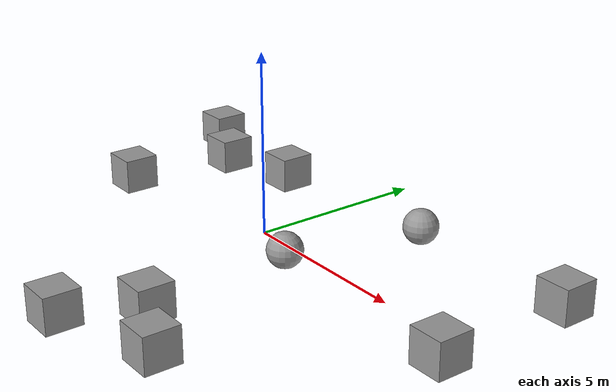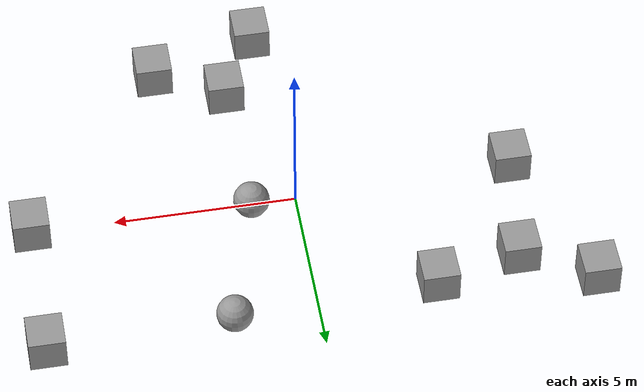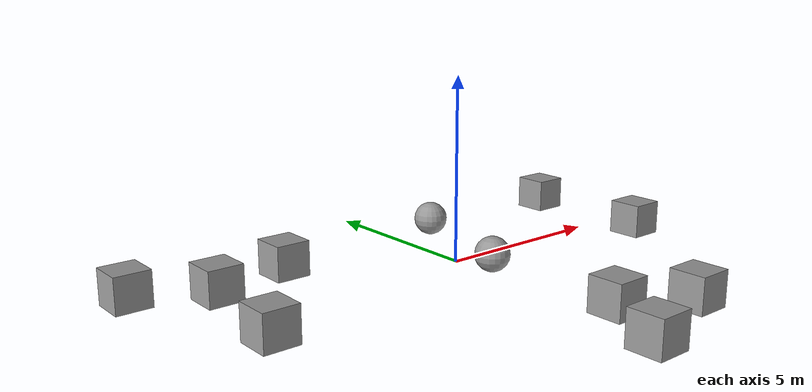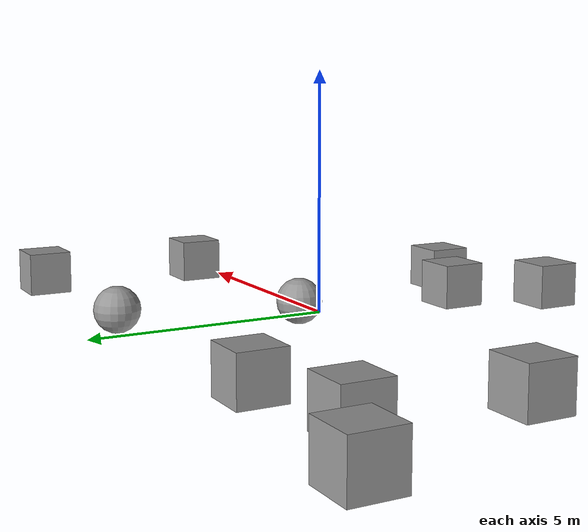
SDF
<?xml version='1.0'?>
<sdf version='1.6'>
  <model name='floorplan_with_objects'>
    <link name='link_0'>
      <inertial>
        <mass>1</mass>
        <inertia>
          <ixx>0.166667</ixx>
          <ixy>0</ixy>
          <ixz>0</ixz>
          <iyy>0.166667</iyy>
          <iyz>0</iyz>
          <izz>0.166667</izz>
        </inertia>
      </inertial>
      <pose frame=''>-5.69964 2.68015 0 0 -0 0</pose>
      <visual name='visual'>
        <pose frame=''>0 0 0 0 -0 0</pose>
        <geometry>
          <box>
            <size>1 1 1</size>
          </box>
        </geometry>
        <material>
          <lighting>1</lighting>
          <script>
            <uri>file://media/materials/scripts/gazebo.material</uri>
            <name>Gazebo/Grey</name>
          </script>
        </material>
        <transparency>0</transparency>
        <cast_shadows>1</cast_shadows>
      </visual>
      <collision name='collision'>
        <laser_retro>0</laser_retro>
        <max_contacts>10</max_contacts>
        <pose frame=''>0 0 0 0 -0 0</pose>
        <geometry>
          <box>
            <size>1 1 1</size>
          </box>
        </geometry>
        <surface>
          <friction>
            <ode>
              <mu>1</mu>
              <mu2>1</mu2>
              <fdir1>0 0 0</fdir1>
              <slip1>0</slip1>
              <slip2>0</slip2>
            </ode>
            <torsional>
              <coefficient>1</coefficient>
              <patch_radius>0</patch_radius>
              <surface_radius>0</surface_radius>
              <use_patch_radius>1</use_patch_radius>
              <ode>
                <slip>0</slip>
              </ode>
            </torsional>
          </friction>
          <bounce>
            <restitution_coefficient>0</restitution_coefficient>
            <threshold>1e+06</threshold>
          </bounce>
          <contact>
            <collide_without_contact>0</collide_without_contact>
            <collide_without_contact_bitmask>1</collide_without_contact_bitmask>
            <collide_bitmask>1</collide_bitmask>
            <ode>
              <soft_cfm>0</soft_cfm>
              <soft_erp>0.2</soft_erp>
              <kp>1e+13</kp>
              <kd>1</kd>
              <max_vel>0.01</max_vel>
              <min_depth>0</min_depth>
            </ode>
            <bullet>
              <split_impulse>1</split_impulse>
              <split_impulse_penetration_threshold>-0.01</split_impulse_penetration_threshold>
              <soft_cfm>0</soft_cfm>
              <soft_erp>0.2</soft_erp>
              <kp>1e+13</kp>
              <kd>1</kd>
            </bullet>
          </contact>
        </surface>
      </collision>
    </link>
    <link name='link_1'>
      <inertial>
        <mass>1</mass>
        <inertia>
          <ixx>0.1</ixx>
          <ixy>0</ixy>
          <ixz>0</ixz>
          <iyy>0.1</iyy>
          <iyz>0</iyz>
          <izz>0.1</izz>
        </inertia>
      </inertial>
      <pose frame=''>2.23614 3.61059 0 0 -0 0</pose>
      <visual name='visual'>
        <pose frame=''>0 0 0 0 -0 0</pose>
        <geometry>
          <sphere>
            <radius>0.5</radius>
          </sphere>
        </geometry>
        <material>
          <lighting>1</lighting>
          <script>
            <uri>file://media/materials/scripts/gazebo.material</uri>
            <name>Gazebo/Grey</name>
          </script>
        </material>
        <transparency>0</transparency>
        <cast_shadows>1</cast_shadows>
      </visual>
      <collision name='collision'>
        <laser_retro>0</laser_retro>
        <max_contacts>10</max_contacts>
        <pose frame=''>0 0 0 0 -0 0</pose>
        <geometry>
          <sphere>
            <radius>0.5</radius>
          </sphere>
        </geometry>
        <surface>
          <friction>
            <ode>
              <mu>1</mu>
              <mu2>1</mu2>
              <fdir1>0 0 0</fdir1>
              <slip1>0</slip1>
              <slip2>0</slip2>
            </ode>
            <torsional>
              <coefficient>1</coefficient>
              <patch_radius>0</patch_radius>
              <surface_radius>0</surface_radius>
              <use_patch_radius>1</use_patch_radius>
              <ode>
                <slip>0</slip>
              </ode>
            </torsional>
          </friction>
          <bounce>
            <restitution_coefficient>0</restitution_coefficient>
            <threshold>1e+06</threshold>
          </bounce>
          <contact>
            <collide_without_contact>0</collide_without_contact>
            <collide_without_contact_bitmask>1</collide_without_contact_bitmask>
            <collide_bitmask>1</collide_bitmask>
            <ode>
              <soft_cfm>0</soft_cfm>
              <soft_erp>0.2</soft_erp>
              <kp>1e+13</kp>
              <kd>1</kd>
              <max_vel>0.01</max_vel>
              <min_depth>0</min_depth>
            </ode>
            <bullet>
              <split_impulse>1</split_impulse>
              <split_impulse_penetration_threshold>-0.01</split_impulse_penetration_threshold>
              <soft_cfm>0</soft_cfm>
              <soft_erp>0.2</soft_erp>
              <kp>1e+13</kp>
              <kd>1</kd>
            </bullet>
          </contact>
        </surface>
      </collision>
    </link>
    <link name='link_10'>
      <inertial>
        <mass>1</mass>
        <inertia>
          <ixx>0.166667</ixx>
          <ixy>0</ixy>
          <ixz>0</ixz>
          <iyy>0.166667</iyy>
          <iyz>0</iyz>
          <izz>0.166667</izz>
        </inertia>
      </inertial>
      <pose frame=''>-7.65721 3.74902 0 0 -0 0</pose>
      <visual name='visual'>
        <pose frame=''>0 0 0 0 -0 0</pose>
        <geometry>
          <box>
            <size>1 1 1</size>
          </box>
        </geometry>
        <material>
          <lighting>1</lighting>
          <script>
            <uri>file://media/materials/scripts/gazebo.material</uri>
            <name>Gazebo/Grey</name>
          </script>
        </material>
        <transparency>0</transparency>
        <cast_shadows>1</cast_shadows>
      </visual>
      <collision name='collision'>
        <laser_retro>0</laser_retro>
        <max_contacts>10</max_contacts>
        <pose frame=''>0 0 0 0 -0 0</pose>
        <geometry>
          <box>
            <size>1 1 1</size>
          </box>
        </geometry>
        <surface>
          <friction>
            <ode>
              <mu>1</mu>
              <mu2>1</mu2>
              <fdir1>0 0 0</fdir1>
              <slip1>0</slip1>
              <slip2>0</slip2>
            </ode>
            <torsional>
              <coefficient>1</coefficient>
              <patch_radius>0</patch_radius>
              <surface_radius>0</surface_radius>
              <use_patch_radius>1</use_patch_radius>
              <ode>
                <slip>0</slip>
              </ode>
            </torsional>
          </friction>
          <bounce>
            <restitution_coefficient>0</restitution_coefficient>
            <threshold>1e+06</threshold>
          </bounce>
          <contact>
            <collide_without_contact>0</collide_without_contact>
            <collide_without_contact_bitmask>1</collide_without_contact_bitmask>
            <collide_bitmask>1</collide_bitmask>
            <ode>
              <soft_cfm>0</soft_cfm>
              <soft_erp>0.2</soft_erp>
              <kp>1e+13</kp>
              <kd>1</kd>
              <max_vel>0.01</max_vel>
              <min_depth>0</min_depth>
            </ode>
            <bullet>
              <split_impulse>1</split_impulse>
              <split_impulse_penetration_threshold>-0.01</split_impulse_penetration_threshold>
              <soft_cfm>0</soft_cfm>
              <soft_erp>0.2</soft_erp>
              <kp>1e+13</kp>
              <kd>1</kd>
            </bullet>
          </contact>
        </surface>
      </collision>
    </link>
    <link name='link_2'>
      <inertial>
        <mass>1</mass>
        <inertia>
          <ixx>0.1</ixx>
          <ixy>0</ixy>
          <ixz>0</ixz>
          <iyy>0.1</iyy>
          <iyz>0</iyz>
          <izz>0.1</izz>
        </inertia>
      </inertial>
      <pose frame=''>1.19211 -0.180632 0 0 -0 0</pose>
      <visual name='visual'>
        <pose frame=''>0 0 0 0 -0 0</pose>
        <geometry>
          <sphere>
            <radius>0.5</radius>
          </sphere>
        </geometry>
        <material>
          <lighting>1</lighting>
          <script>
            <uri>file://media/materials/scripts/gazebo.material</uri>
            <name>Gazebo/Grey</name>
          </script>
        </material>
        <transparency>0</transparency>
        <cast_shadows>1</cast_shadows>
      </visual>
      <collision name='collision'>
        <laser_retro>0</laser_retro>
        <max_contacts>10</max_contacts>
        <pose frame=''>0 0 0 0 -0 0</pose>
        <geometry>
          <sphere>
            <radius>0.5</radius>
          </sphere>
        </geometry>
        <surface>
          <friction>
            <ode>
              <mu>1</mu>
              <mu2>1</mu2>
              <fdir1>0 0 0</fdir1>
              <slip1>0</slip1>
              <slip2>0</slip2>
            </ode>
            <torsional>
              <coefficient>1</coefficient>
              <patch_radius>0</patch_radius>
              <surface_radius>0</surface_radius>
              <use_patch_radius>1</use_patch_radius>
              <ode>
                <slip>0</slip>
              </ode>
            </torsional>
          </friction>
          <bounce>
            <restitution_coefficient>0</restitution_coefficient>
            <threshold>1e+06</threshold>
          </bounce>
          <contact>
            <collide_without_contact>0</collide_without_contact>
            <collide_without_contact_bitmask>1</collide_without_contact_bitmask>
            <collide_bitmask>1</collide_bitmask>
            <ode>
              <soft_cfm>0</soft_cfm>
              <soft_erp>0.2</soft_erp>
              <kp>1e+13</kp>
              <kd>1</kd>
              <max_vel>0.01</max_vel>
              <min_depth>0</min_depth>
            </ode>
            <bullet>
              <split_impulse>1</split_impulse>
              <split_impulse_penetration_threshold>-0.01</split_impulse_penetration_threshold>
              <soft_cfm>0</soft_cfm>
              <soft_erp>0.2</soft_erp>
              <kp>1e+13</kp>
              <kd>1</kd>
            </bullet>
          </contact>
        </surface>
      </collision>
    </link>
    <link name='link_3'>
      <inertial>
        <mass>1</mass>
        <inertia>
          <ixx>0.166667</ixx>
          <ixy>0</ixy>
          <ixz>0</ixz>
          <iyy>0.166667</iyy>
          <iyz>0</iyz>
          <izz>0.166667</izz>
        </inertia>
      </inertial>
      <pose frame=''>7.27265 -0.327209 0 0 -0 0</pose>
      <visual name='visual'>
        <pose frame=''>0 0 0 0 -0 0</pose>
        <geometry>
          <box>
            <size>1 1 1</size>
          </box>
        </geometry>
        <material>
          <lighting>1</lighting>
          <script>
            <uri>file://media/materials/scripts/gazebo.material</uri>
            <name>Gazebo/Grey</name>
          </script>
        </material>
        <transparency>0</transparency>
        <cast_shadows>1</cast_shadows>
      </visual>
      <collision name='collision'>
        <laser_retro>0</laser_retro>
        <max_contacts>10</max_contacts>
        <pose frame=''>0 0 0 0 -0 0</pose>
        <geometry>
          <box>
            <size>1 1 1</size>
          </box>
        </geometry>
        <surface>
          <friction>
            <ode>
              <mu>1</mu>
              <mu2>1</mu2>
              <fdir1>0 0 0</fdir1>
              <slip1>0</slip1>
              <slip2>0</slip2>
            </ode>
            <torsional>
              <coefficient>1</coefficient>
              <patch_radius>0</patch_radius>
              <surface_radius>0</surface_radius>
              <use_patch_radius>1</use_patch_radius>
              <ode>
                <slip>0</slip>
              </ode>
            </torsional>
          </friction>
          <bounce>
            <restitution_coefficient>0</restitution_coefficient>
            <threshold>1e+06</threshold>
          </bounce>
          <contact>
            <collide_without_contact>0</collide_without_contact>
            <collide_without_contact_bitmask>1</collide_without_contact_bitmask>
            <collide_bitmask>1</collide_bitmask>
            <ode>
              <soft_cfm>0</soft_cfm>
              <soft_erp>0.2</soft_erp>
              <kp>1e+13</kp>
              <kd>1</kd>
              <max_vel>0.01</max_vel>
              <min_depth>0</min_depth>
            </ode>
            <bullet>
              <split_impulse>1</split_impulse>
              <split_impulse_penetration_threshold>-0.01</split_impulse_penetration_threshold>
              <soft_cfm>0</soft_cfm>
              <soft_erp>0.2</soft_erp>
              <kp>1e+13</kp>
              <kd>1</kd>
            </bullet>
          </contact>
        </surface>
      </collision>
    </link>
    <link name='link_4'>
      <inertial>
        <mass>1</mass>
        <inertia>
          <ixx>0.166667</ixx>
          <ixy>0</ixy>
          <ixz>0</ixz>
          <iyy>0.166667</iyy>
          <iyz>0</iyz>
          <izz>0.166667</izz>
        </inertia>
      </inertial>
      <pose frame=''>7.30996 3.68311 0 0 -0 0</pose>
      <visual name='visual'>
        <pose frame=''>0 0 0 0 -0 0</pose>
        <geometry>
          <box>
            <size>1 1 1</size>
          </box>
        </geometry>
        <material>
          <lighting>1</lighting>
          <script>
            <uri>file://media/materials/scripts/gazebo.material</uri>
            <name>Gazebo/Grey</name>
          </script>
        </material>
        <transparency>0</transparency>
        <cast_shadows>1</cast_shadows>
      </visual>
      <collision name='collision'>
        <laser_retro>0</laser_retro>
        <max_contacts>10</max_contacts>
        <pose frame=''>0 0 0 0 -0 0</pose>
        <geometry>
          <box>
            <size>1 1 1</size>
          </box>
        </geometry>
        <surface>
          <friction>
            <ode>
              <mu>1</mu>
              <mu2>1</mu2>
              <fdir1>0 0 0</fdir1>
              <slip1>0</slip1>
              <slip2>0</slip2>
            </ode>
            <torsional>
              <coefficient>1</coefficient>
              <patch_radius>0</patch_radius>
              <surface_radius>0</surface_radius>
              <use_patch_radius>1</use_patch_radius>
              <ode>
                <slip>0</slip>
              </ode>
            </torsional>
          </friction>
          <bounce>
            <restitution_coefficient>0</restitution_coefficient>
            <threshold>1e+06</threshold>
          </bounce>
          <contact>
            <collide_without_contact>0</collide_without_contact>
            <collide_without_contact_bitmask>1</collide_without_contact_bitmask>
            <collide_bitmask>1</collide_bitmask>
            <ode>
              <soft_cfm>0</soft_cfm>
              <soft_erp>0.2</soft_erp>
              <kp>1e+13</kp>
              <kd>1</kd>
              <max_vel>0.01</max_vel>
              <min_depth>0</min_depth>
            </ode>
            <bullet>
              <split_impulse>1</split_impulse>
              <split_impulse_penetration_threshold>-0.01</split_impulse_penetration_threshold>
              <soft_cfm>0</soft_cfm>
              <soft_erp>0.2</soft_erp>
              <kp>1e+13</kp>
              <kd>1</kd>
            </bullet>
          </contact>
        </surface>
      </collision>
    </link>
    <link name='link_5'>
      <inertial>
        <mass>1</mass>
        <inertia>
          <ixx>0.166667</ixx>
          <ixy>0</ixy>
          <ixz>0</ixz>
          <iyy>0.166667</iyy>
          <iyz>0</iyz>
          <izz>0.166667</izz>
        </inertia>
      </inertial>
      <pose frame=''>1.31332 -4.34948 0 0 -0 0</pose>
      <visual name='visual'>
        <pose frame=''>0 0 0 0 -0 0</pose>
        <geometry>
          <box>
            <size>1 1 1</size>
          </box>
        </geometry>
        <material>
          <lighting>1</lighting>
          <script>
            <uri>file://media/materials/scripts/gazebo.material</uri>
            <name>Gazebo/Grey</name>
          </script>
        </material>
        <transparency>0</transparency>
        <cast_shadows>1</cast_shadows>
      </visual>
      <collision name='collision'>
        <laser_retro>0</laser_retro>
        <max_contacts>10</max_contacts>
        <pose frame=''>0 0 0 0 -0 0</pose>
        <geometry>
          <box>
            <size>1 1 1</size>
          </box>
        </geometry>
        <surface>
          <friction>
            <ode>
              <mu>1</mu>
              <mu2>1</mu2>
              <fdir1>0 0 0</fdir1>
              <slip1>0</slip1>
              <slip2>0</slip2>
            </ode>
            <torsional>
              <coefficient>1</coefficient>
              <patch_radius>0</patch_radius>
              <surface_radius>0</surface_radius>
              <use_patch_radius>1</use_patch_radius>
              <ode>
                <slip>0</slip>
              </ode>
            </torsional>
          </friction>
          <bounce>
            <restitution_coefficient>0</restitution_coefficient>
            <threshold>1e+06</threshold>
          </bounce>
          <contact>
            <collide_without_contact>0</collide_without_contact>
            <collide_without_contact_bitmask>1</collide_without_contact_bitmask>
            <collide_bitmask>1</collide_bitmask>
            <ode>
              <soft_cfm>0</soft_cfm>
              <soft_erp>0.2</soft_erp>
              <kp>1e+13</kp>
              <kd>1</kd>
              <max_vel>0.01</max_vel>
              <min_depth>0</min_depth>
            </ode>
            <bullet>
              <split_impulse>1</split_impulse>
              <split_impulse_penetration_threshold>-0.01</split_impulse_penetration_threshold>
              <soft_cfm>0</soft_cfm>
              <soft_erp>0.2</soft_erp>
              <kp>1e+13</kp>
              <kd>1</kd>
            </bullet>
          </contact>
        </surface>
      </collision>
    </link>
    <link name='link_6'>
      <inertial>
        <mass>1</mass>
        <inertia>
          <ixx>0.166667</ixx>
          <ixy>0</ixy>
          <ixz>0</ixz>
          <iyy>0.166667</iyy>
          <iyz>0</iyz>
          <izz>0.166667</izz>
        </inertia>
      </inertial>
      <pose frame=''>3.21663 -5.33271 0 0 -0 0</pose>
      <visual name='visual'>
        <pose frame=''>0 0 0 0 -0 0</pose>
        <geometry>
          <box>
            <size>1 1 1</size>
          </box>
        </geometry>
        <material>
          <lighting>1</lighting>
          <script>
            <uri>file://media/materials/scripts/gazebo.material</uri>
            <name>Gazebo/Grey</name>
          </script>
        </material>
        <transparency>0</transparency>
        <cast_shadows>1</cast_shadows>
      </visual>
      <collision name='collision'>
        <laser_retro>0</laser_retro>
        <max_contacts>10</max_contacts>
        <pose frame=''>0 0 0 0 -0 0</pose>
        <geometry>
          <box>
            <size>1 1 1</size>
          </box>
        </geometry>
        <surface>
          <friction>
            <ode>
              <mu>1</mu>
              <mu2>1</mu2>
              <fdir1>0 0 0</fdir1>
              <slip1>0</slip1>
              <slip2>0</slip2>
            </ode>
            <torsional>
              <coefficient>1</coefficient>
              <patch_radius>0</patch_radius>
              <surface_radius>0</surface_radius>
              <use_patch_radius>1</use_patch_radius>
              <ode>
                <slip>0</slip>
              </ode>
            </torsional>
          </friction>
          <bounce>
            <restitution_coefficient>0</restitution_coefficient>
            <threshold>1e+06</threshold>
          </bounce>
          <contact>
            <collide_without_contact>0</collide_without_contact>
            <collide_without_contact_bitmask>1</collide_without_contact_bitmask>
            <collide_bitmask>1</collide_bitmask>
            <ode>
              <soft_cfm>0</soft_cfm>
              <soft_erp>0.2</soft_erp>
              <kp>1e+13</kp>
              <kd>1</kd>
              <max_vel>0.01</max_vel>
              <min_depth>0</min_depth>
            </ode>
            <bullet>
              <split_impulse>1</split_impulse>
              <split_impulse_penetration_threshold>-0.01</split_impulse_penetration_threshold>
              <soft_cfm>0</soft_cfm>
              <soft_erp>0.2</soft_erp>
              <kp>1e+13</kp>
              <kd>1</kd>
            </bullet>
          </contact>
        </surface>
      </collision>
    </link>
    <link name='link_7'>
      <inertial>
        <mass>1</mass>
        <inertia>
          <ixx>0.166667</ixx>
          <ixy>0</ixy>
          <ixz>0</ixz>
          <iyy>0.166667</iyy>
          <iyz>0</iyz>
          <izz>0.166667</izz>
        </inertia>
      </inertial>
      <pose frame=''>0.279299 -6.27607 0 0 -0 0</pose>
      <visual name='visual'>
        <pose frame=''>0 0 0 0 -0 0</pose>
        <geometry>
          <box>
            <size>1 1 1</size>
          </box>
        </geometry>
        <material>
          <lighting>1</lighting>
          <script>
            <uri>file://media/materials/scripts/gazebo.material</uri>
            <name>Gazebo/Grey</name>
          </script>
        </material>
        <transparency>0</transparency>
        <cast_shadows>1</cast_shadows>
      </visual>
      <collision name='collision'>
        <laser_retro>0</laser_retro>
        <max_contacts>10</max_contacts>
        <pose frame=''>0 0 0 0 -0 0</pose>
        <geometry>
          <box>
            <size>1 1 1</size>
          </box>
        </geometry>
        <surface>
          <friction>
            <ode>
              <mu>1</mu>
              <mu2>1</mu2>
              <fdir1>0 0 0</fdir1>
              <slip1>0</slip1>
              <slip2>0</slip2>
            </ode>
            <torsional>
              <coefficient>1</coefficient>
              <patch_radius>0</patch_radius>
              <surface_radius>0</surface_radius>
              <use_patch_radius>1</use_patch_radius>
              <ode>
                <slip>0</slip>
              </ode>
            </torsional>
          </friction>
          <bounce>
            <restitution_coefficient>0</restitution_coefficient>
            <threshold>1e+06</threshold>
          </bounce>
          <contact>
            <collide_without_contact>0</collide_without_contact>
            <collide_without_contact_bitmask>1</collide_without_contact_bitmask>
            <collide_bitmask>1</collide_bitmask>
            <ode>
              <soft_cfm>0</soft_cfm>
              <soft_erp>0.2</soft_erp>
              <kp>1e+13</kp>
              <kd>1</kd>
              <max_vel>0.01</max_vel>
              <min_depth>0</min_depth>
            </ode>
            <bullet>
              <split_impulse>1</split_impulse>
              <split_impulse_penetration_threshold>-0.01</split_impulse_penetration_threshold>
              <soft_cfm>0</soft_cfm>
              <soft_erp>0.2</soft_erp>
              <kp>1e+13</kp>
              <kd>1</kd>
            </bullet>
          </contact>
        </surface>
      </collision>
    </link>
    <link name='link_8'>
      <inertial>
        <mass>1</mass>
        <inertia>
          <ixx>0.166667</ixx>
          <ixy>0</ixy>
          <ixz>0</ixz>
          <iyy>0.166667</iyy>
          <iyz>0</iyz>
          <izz>0.166667</izz>
        </inertia>
      </inertial>
      <pose frame=''>-6.10308 -0.511614 0 0 -0 0</pose>
      <visual name='visual'>
        <pose frame=''>0 0 0 0 -0 0</pose>
        <geometry>
          <box>
            <size>1 1 1</size>
          </box>
        </geometry>
        <material>
          <lighting>1</lighting>
          <script>
            <uri>file://media/materials/scripts/gazebo.material</uri>
            <name>Gazebo/Grey</name>
          </script>
        </material>
        <transparency>0</transparency>
        <cast_shadows>1</cast_shadows>
      </visual>
      <collision name='collision'>
        <laser_retro>0</laser_retro>
        <max_contacts>10</max_contacts>
        <pose frame=''>0 0 0 0 -0 0</pose>
        <geometry>
          <box>
            <size>1 1 1</size>
          </box>
        </geometry>
        <surface>
          <friction>
            <ode>
              <mu>1</mu>
              <mu2>1</mu2>
              <fdir1>0 0 0</fdir1>
              <slip1>0</slip1>
              <slip2>0</slip2>
            </ode>
            <torsional>
              <coefficient>1</coefficient>
              <patch_radius>0</patch_radius>
              <surface_radius>0</surface_radius>
              <use_patch_radius>1</use_patch_radius>
              <ode>
                <slip>0</slip>
              </ode>
            </torsional>
          </friction>
          <bounce>
            <restitution_coefficient>0</restitution_coefficient>
            <threshold>1e+06</threshold>
          </bounce>
          <contact>
            <collide_without_contact>0</collide_without_contact>
            <collide_without_contact_bitmask>1</collide_without_contact_bitmask>
            <collide_bitmask>1</collide_bitmask>
            <ode>
              <soft_cfm>0</soft_cfm>
              <soft_erp>0.2</soft_erp>
              <kp>1e+13</kp>
              <kd>1</kd>
              <max_vel>0.01</max_vel>
              <min_depth>0</min_depth>
            </ode>
            <bullet>
              <split_impulse>1</split_impulse>
              <split_impulse_penetration_threshold>-0.01</split_impulse_penetration_threshold>
              <soft_cfm>0</soft_cfm>
              <soft_erp>0.2</soft_erp>
              <kp>1e+13</kp>
              <kd>1</kd>
            </bullet>
          </contact>
        </surface>
      </collision>
    </link>
    <link name='link_9'>
      <inertial>
        <mass>1</mass>
        <inertia>
          <ixx>0.166667</ixx>
          <ixy>0</ixy>
          <ixz>0</ixz>
          <iyy>0.166667</iyy>
          <iyz>0</iyz>
          <izz>0.166667</izz>
        </inertia>
      </inertial>
      <pose frame=''>-3.36017 3.25483 0 0 -0 0</pose>
      <visual name='visual'>
        <pose frame=''>0 0 0 0 -0 0</pose>
        <geometry>
          <box>
            <size>1 1 1</size>
          </box>
        </geometry>
        <material>
          <lighting>1</lighting>
          <script>
            <uri>file://media/materials/scripts/gazebo.material</uri>
            <name>Gazebo/Grey</name>
          </script>
        </material>
        <transparency>0</transparency>
        <cast_shadows>1</cast_shadows>
      </visual>
      <collision name='collision'>
        <laser_retro>0</laser_retro>
        <max_contacts>10</max_contacts>
        <pose frame=''>0 0 0 0 -0 0</pose>
        <geometry>
          <box>
            <size>1 1 1</size>
          </box>
        </geometry>
        <surface>
          <friction>
            <ode>
              <mu>1</mu>
              <mu2>1</mu2>
              <fdir1>0 0 0</fdir1>
              <slip1>0</slip1>
              <slip2>0</slip2>
            </ode>
            <torsional>
              <coefficient>1</coefficient>
              <patch_radius>0</patch_radius>
              <surface_radius>0</surface_radius>
              <use_patch_radius>1</use_patch_radius>
              <ode>
                <slip>0</slip>
              </ode>
            </torsional>
          </friction>
          <bounce>
            <restitution_coefficient>0</restitution_coefficient>
            <threshold>1e+06</threshold>
          </bounce>
          <contact>
            <collide_without_contact>0</collide_without_contact>
            <collide_without_contact_bitmask>1</collide_without_contact_bitmask>
            <collide_bitmask>1</collide_bitmask>
            <ode>
              <soft_cfm>0</soft_cfm>
              <soft_erp>0.2</soft_erp>
              <kp>1e+13</kp>
              <kd>1</kd>
              <max_vel>0.01</max_vel>
              <min_depth>0</min_depth>
            </ode>
            <bullet>
              <split_impulse>1</split_impulse>
              <split_impulse_penetration_threshold>-0.01</split_impulse_penetration_threshold>
              <soft_cfm>0</soft_cfm>
              <soft_erp>0.2</soft_erp>
              <kp>1e+13</kp>
              <kd>1</kd>
            </bullet>
          </contact>
        </surface>
      </collision>
    </link>
    <static>0</static>
    <allow_auto_disable>1</allow_auto_disable>
  </model>
</sdf>
